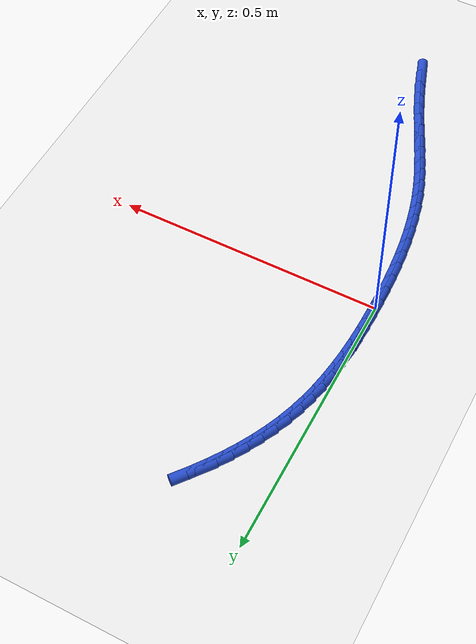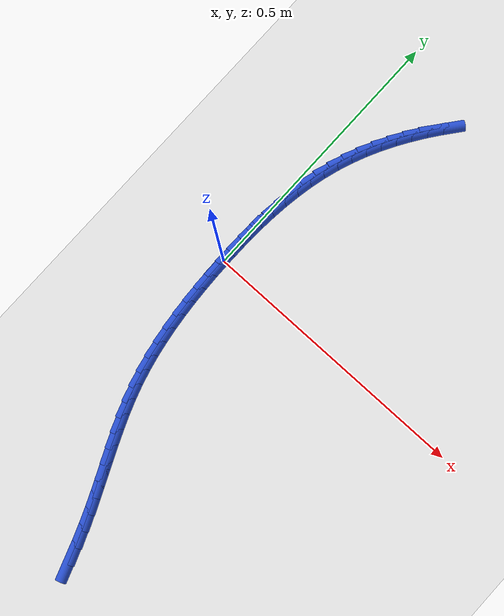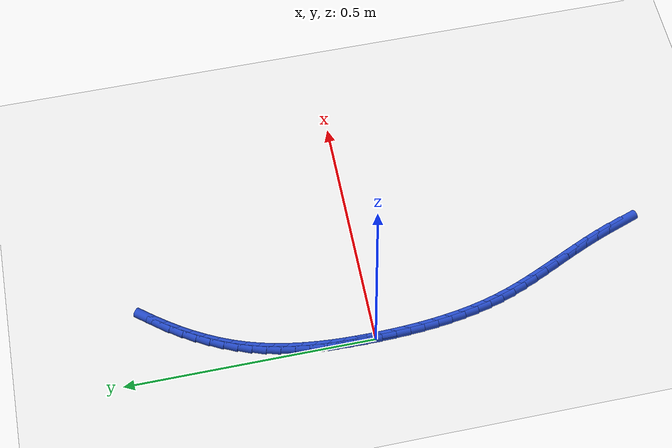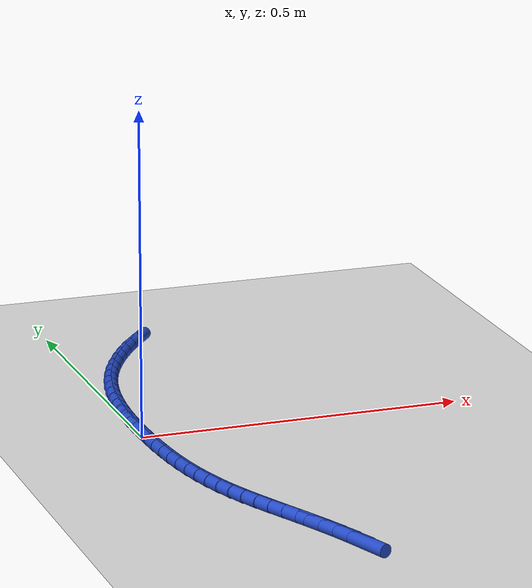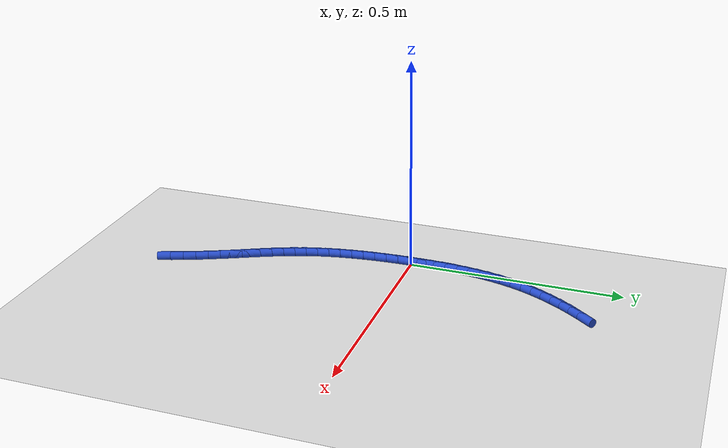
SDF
<sdf version="1.6">
 <world name="default">
  <model name="ground_plane">
   <static>1</static>
   <link name="link">
    <collision name="collision">
     <geometry><plane><normal>0 0 1</normal><size>100 100</size></plane></geometry>
     <surface><friction><ode><mu>100</mu><mu2>50</mu2></ode></friction></surface>
    </collision>
    <visual name="visual">
     <cast_shadows>0</cast_shadows>
     <geometry><plane><normal>0 0 1</normal><size>100 100</size></plane></geometry>
     <material>
      <script><uri>file://media/materials/scripts/gazebo.material</uri><name>Gazebo/WhiteGlow</name></script>
     </material>
    </visual>
   </link>
  </model>
  <model name="line">
   <link name="link_0">
    <pose>-3.469446951953614e-18 -4.85722573273506e-17 0.01 0 1.57 1.5706727892045793</pose>
    <collision name="collision">
     <geometry><cylinder><radius>0.01</radius><length>0.08</length></cylinder></geometry>
    </collision>
    <visual name="visual">
     <material>
      <script><name>Gazebo/Blue</name><uri>file://media/materials/scripts/gazebo.material</uri></script>
     </material>
     <geometry><cylinder><radius>0.01</radius><length>0.08</length></cylinder></geometry>
    </visual>
   </link>
   <link name="link_1">
    <pose>3.5528886475424563e-06 0.0287595752867521 0.01 0 1.57 1.5489522809408764</pose>
    <collision name="collision">
     <geometry><cylinder><radius>0.01</radius><length>0.08</length></cylinder></geometry>
    </collision>
    <visual name="visual">
     <material>
      <script><name>Gazebo/Blue</name><uri>file://media/materials/scripts/gazebo.material</uri></script>
     </material>
     <geometry><cylinder><radius>0.01</radius><length>0.08</length></cylinder></geometry>
    </visual>
   </link>
   <link name="link_2">
    <pose>0.0006304451668905879 0.057453553017089924 0.01 0 1.57 1.5232653918438757</pose>
    <collision name="collision">
     <geometry><cylinder><radius>0.01</radius><length>0.08</length></cylinder></geometry>
    </collision>
    <visual name="visual">
     <material>
      <script><name>Gazebo/Blue</name><uri>file://media/materials/scripts/gazebo.material</uri></script>
     </material>
     <geometry><cylinder><radius>0.01</radius><length>0.08</length></cylinder></geometry>
    </visual>
   </link>
   <link name="link_3">
    <pose>0.001989441794584432 0.08602385285427798 0.01 0 1.57 1.4934595465308282</pose>
    <collision name="collision">
     <geometry><cylinder><radius>0.01</radius><length>0.08</length></cylinder></geometry>
    </collision>
    <visual name="visual">
     <material>
      <script><name>Gazebo/Blue</name><uri>file://media/materials/scripts/gazebo.material</uri></script>
     </material>
     <geometry><cylinder><radius>0.01</radius><length>0.08</length></cylinder></geometry>
    </visual>
   </link>
   <link name="link_4">
    <pose>0.004189307731584379 0.11441239446158094 0.01 0 1.57 1.4593718225182803</pose>
    <collision name="collision">
     <geometry><cylinder><radius>0.01</radius><length>0.08</length></cylinder></geometry>
    </collision>
    <visual name="visual">
     <material>
      <script><name>Gazebo/Blue</name><uri>file://media/materials/scripts/gazebo.material</uri></script>
     </material>
     <geometry><cylinder><radius>0.01</radius><length>0.08</length></cylinder></geometry>
    </visual>
   </link>
   <link name="link_5">
    <pose>0.007338807937745731 0.14256109750226337 0.01 0 1.57 1.4208431871317464</pose>
    <collision name="collision">
     <geometry><cylinder><radius>0.01</radius><length>0.08</length></cylinder></geometry>
    </collision>
    <visual name="visual">
     <material>
      <script><name>Gazebo/Blue</name><uri>file://media/materials/scripts/gazebo.material</uri></script>
     </material>
     <geometry><cylinder><radius>0.01</radius><length>0.08</length></cylinder></geometry>
    </visual>
   </link>
   <link name="link_6">
    <pose>0.011546707372923794 0.17041188163958992 0.01 0 1.57 1.3777372547432474</pose>
    <collision name="collision">
     <geometry><cylinder><radius>0.01</radius><length>0.08</length></cylinder></geometry>
    </collision>
    <visual name="visual">
     <material>
      <script><name>Gazebo/Blue</name><uri>file://media/materials/scripts/gazebo.material</uri></script>
     </material>
     <geometry><cylinder><radius>0.01</radius><length>0.08</length></cylinder></geometry>
    </visual>
   </link>
   <link name="link_7">
    <pose>0.01692177099697386 0.1979066665368252 0.01 0 1.57 1.3299640991069586</pose>
    <collision name="collision">
     <geometry><cylinder><radius>0.01</radius><length>0.08</length></cylinder></geometry>
    </collision>
    <visual name="visual">
     <material>
      <script><name>Gazebo/Blue</name><uri>file://media/materials/scripts/gazebo.material</uri></script>
     </material>
     <geometry><cylinder><radius>0.01</radius><length>0.08</length></cylinder></geometry>
    </visual>
   </link>
   <link name="link_8">
    <pose>0.023572763769751245 0.22498737185723383 0.01 0 1.57 1.2775089130807966</pose>
    <collision name="collision">
     <geometry><cylinder><radius>0.01</radius><length>0.08</length></cylinder></geometry>
    </collision>
    <visual name="visual">
     <material>
      <script><name>Gazebo/Blue</name><uri>file://media/materials/scripts/gazebo.material</uri></script>
     </material>
     <geometry><cylinder><radius>0.01</radius><length>0.08</length></cylinder></geometry>
    </visual>
   </link>
   <link name="link_9">
    <pose>0.031608450651111245 0.2515959172640805 0.01 0 1.57 1.2209503418457286</pose>
    <collision name="collision">
     <geometry><cylinder><radius>0.01</radius><length>0.08</length></cylinder></geometry>
    </collision>
    <visual name="visual">
     <material>
      <script><name>Gazebo/Blue</name><uri>file://media/materials/scripts/gazebo.material</uri></script>
     </material>
     <geometry><cylinder><radius>0.01</radius><length>0.08</length></cylinder></geometry>
    </visual>
   </link>
   <link name="link_10">
    <pose>0.041124724547704376 0.27767833581572926 0.01 0 1.57 1.165088919046137</pose>
    <collision name="collision">
     <geometry><cylinder><radius>0.01</radius><length>0.08</length></cylinder></geometry>
    </collision>
    <visual name="visual">
     <material>
      <script><name>Gazebo/Blue</name><uri>file://media/materials/scripts/gazebo.material</uri></script>
     </material>
     <geometry><cylinder><radius>0.01</radius><length>0.08</length></cylinder></geometry>
    </visual>
   </link>
   <link name="link_11">
    <pose>0.052095644841664776 0.3032195937084639 0.01 0 1.57 1.1126270308486028</pose>
    <collision name="collision">
     <geometry><cylinder><radius>0.01</radius><length>0.08</length></cylinder></geometry>
    </collision>
    <visual name="visual">
     <material>
      <script><name>Gazebo/Blue</name><uri>file://media/materials/scripts/gazebo.material</uri></script>
     </material>
     <geometry><cylinder><radius>0.01</radius><length>0.08</length></cylinder></geometry>
    </visual>
   </link>
   <link name="link_12">
    <pose>0.06442812869197069 0.32822611311667155 0.01 0 1.57 1.0636623158189433</pose>
    <collision name="collision">
     <geometry><cylinder><radius>0.01</radius><length>0.08</length></cylinder></geometry>
    </collision>
    <visual name="visual">
     <material>
      <script><name>Gazebo/Blue</name><uri>file://media/materials/scripts/gazebo.material</uri></script>
     </material>
     <geometry><cylinder><radius>0.01</radius><length>0.08</length></cylinder></geometry>
    </visual>
   </link>
   <link name="link_13">
    <pose>0.07802839228216304 0.3527045402185469 0.01 0 1.57 1.0181881492837634</pose>
    <collision name="collision">
     <geometry><cylinder><radius>0.01</radius><length>0.08</length></cylinder></geometry>
    </collision>
    <visual name="visual">
     <material>
      <script><name>Gazebo/Blue</name><uri>file://media/materials/scripts/gazebo.material</uri></script>
     </material>
     <geometry><cylinder><radius>0.01</radius><length>0.08</length></cylinder></geometry>
    </visual>
   </link>
   <link name="link_14">
    <pose>0.09280265179578287 0.3766615211922848 0.01 0 1.57 0.976138756294928</pose>
    <collision name="collision">
     <geometry><cylinder><radius>0.01</radius><length>0.08</length></cylinder></geometry>
    </collision>
    <visual name="visual">
     <material>
      <script><name>Gazebo/Blue</name><uri>file://media/materials/scripts/gazebo.material</uri></script>
     </material>
     <geometry><cylinder><radius>0.01</radius><length>0.08</length></cylinder></geometry>
    </visual>
   </link>
   <link name="link_15">
    <pose>0.10865712341637107 0.40010370221607977 0.01 0 1.57 0.9374065995087001</pose>
    <collision name="collision">
     <geometry><cylinder><radius>0.01</radius><length>0.08</length></cylinder></geometry>
    </collision>
    <visual name="visual">
     <material>
      <script><name>Gazebo/Blue</name><uri>file://media/materials/scripts/gazebo.material</uri></script>
     </material>
     <geometry><cylinder><radius>0.01</radius><length>0.08</length></cylinder></geometry>
    </visual>
   </link>
   <link name="link_16">
    <pose>0.12549802332746873 0.4230377294681269 0.01 0 1.57 0.901857479022272</pose>
    <collision name="collision">
     <geometry><cylinder><radius>0.01</radius><length>0.08</length></cylinder></geometry>
    </collision>
    <visual name="visual">
     <material>
      <script><name>Gazebo/Blue</name><uri>file://media/materials/scripts/gazebo.material</uri></script>
     </material>
     <geometry><cylinder><radius>0.01</radius><length>0.08</length></cylinder></geometry>
    </visual>
   </link>
   <link name="link_220">
    <pose>0.1489531059514791 -0.542158627953554 0.01 0 1.57 -1.2347671677833867</pose>
    <collision name="collision">
     <geometry><cylinder><radius>0.01</radius><length>0.08</length></cylinder></geometry>
    </collision>
    <visual name="visual">
     <material>
      <script><name>Gazebo/Blue</name><uri>file://media/materials/scripts/gazebo.material</uri></script>
     </material>
     <geometry><cylinder><radius>0.01</radius><length>0.08</length></cylinder></geometry>
    </visual>
   </link>
   <link name="link_221">
    <pose>0.13873270841588797 -0.5128969128521625 0.01 0 1.57 -1.2092306453737074</pose>
    <collision name="collision">
     <geometry><cylinder><radius>0.01</radius><length>0.08</length></cylinder></geometry>
    </collision>
    <visual name="visual">
     <material>
      <script><name>Gazebo/Blue</name><uri>file://media/materials/scripts/gazebo.material</uri></script>
     </material>
     <geometry><cylinder><radius>0.01</radius><length>0.08</length></cylinder></geometry>
    </visual>
   </link>
   <link name="link_222">
    <pose>0.12800739786080348 -0.48453743617247347 0.01 0 1.57 -1.1819973806857564</pose>
    <collision name="collision">
     <geometry><cylinder><radius>0.01</radius><length>0.08</length></cylinder></geometry>
    </collision>
    <visual name="visual">
     <material>
      <script><name>Gazebo/Blue</name><uri>file://media/materials/scripts/gazebo.material</uri></script>
     </material>
     <geometry><cylinder><radius>0.01</radius><length>0.08</length></cylinder></geometry>
    </visual>
   </link>
   <link name="link_223">
    <pose>0.11678402918955162 -0.4571400862432785 0.01 0 1.57 -1.1616739996399112</pose>
    <collision name="collision">
     <geometry><cylinder><radius>0.01</radius><length>0.08</length></cylinder></geometry>
    </collision>
    <visual name="visual">
     <material>
      <script><name>Gazebo/Blue</name><uri>file://media/materials/scripts/gazebo.material</uri></script>
     </material>
     <geometry><cylinder><radius>0.01</radius><length>0.08</length></cylinder></geometry>
    </visual>
   </link>
   <link name="link_224">
    <pose>0.10524857368687612 -0.43053544783450565 0.01 0 1.57 -1.149211244260304</pose>
    <collision name="collision">
     <geometry><cylinder><radius>0.01</radius><length>0.08</length></cylinder></geometry>
    </collision>
    <visual name="visual">
     <material>
      <script><name>Gazebo/Blue</name><uri>file://media/materials/scripts/gazebo.material</uri></script>
     </material>
     <geometry><cylinder><radius>0.01</radius><length>0.08</length></cylinder></geometry>
    </visual>
   </link>
   <link name="link_225">
    <pose>0.09359309260084098 -0.40454630938694575 0.01 0 1.57 -1.1451610865402697</pose>
    <collision name="collision">
     <geometry><cylinder><radius>0.01</radius><length>0.08</length></cylinder></geometry>
    </collision>
    <visual name="visual">
     <material>
      <script><name>Gazebo/Blue</name><uri>file://media/materials/scripts/gazebo.material</uri></script>
     </material>
     <geometry><cylinder><radius>0.01</radius><length>0.08</length></cylinder></geometry>
    </visual>
   </link>
   <link name="link_226">
    <pose>0.08200964717951058 -0.3789954593413903 0.01 0 1.57 -1.1499516948724693</pose>
    <collision name="collision">
     <geometry><cylinder><radius>0.01</radius><length>0.08</length></cylinder></geometry>
    </collision>
    <visual name="visual">
     <material>
      <script><name>Gazebo/Blue</name><uri>file://media/materials/scripts/gazebo.material</uri></script>
     </material>
     <geometry><cylinder><radius>0.01</radius><length>0.08</length></cylinder></geometry>
    </visual>
   </link>
   <link name="link_227">
    <pose>0.07069029867094924 -0.353705686138631 0.01 0 1.57 -1.1638732234232825</pose>
    <collision name="collision">
     <geometry><cylinder><radius>0.01</radius><length>0.08</length></cylinder></geometry>
    </collision>
    <visual name="visual">
     <material>
      <script><name>Gazebo/Blue</name><uri>file://media/materials/scripts/gazebo.material</uri></script>
     </material>
     <geometry><cylinder><radius>0.01</radius><length>0.08</length></cylinder></geometry>
    </visual>
   </link>
   <link name="link_228">
    <pose>0.05982710832322131 -0.3284997782194594 0.01 0 1.57 -1.1870478826179716</pose>
    <collision name="collision">
     <geometry><cylinder><radius>0.01</radius><length>0.08</length></cylinder></geometry>
    </collision>
    <visual name="visual">
     <material>
      <script><name>Gazebo/Blue</name><uri>file://media/materials/scripts/gazebo.material</uri></script>
     </material>
     <geometry><cylinder><radius>0.01</radius><length>0.08</length></cylinder></geometry>
    </visual>
   </link>
   <link name="link_229">
    <pose>0.04961213738439117 -0.3032005240246673 0.01 0 1.57 -1.2193828168302743</pose>
    <collision name="collision">
     <geometry><cylinder><radius>0.01</radius><length>0.08</length></cylinder></geometry>
    </collision>
    <visual name="visual">
     <material>
      <script><name>Gazebo/Blue</name><uri>file://media/materials/scripts/gazebo.material</uri></script>
     </material>
     <geometry><cylinder><radius>0.01</radius><length>0.08</length></cylinder></geometry>
    </visual>
   </link>
   <link name="link_230">
    <pose>0.04023744710252293 -0.2776307119950457 0.01 0 1.57 -1.260469462826123</pose>
    <collision name="collision">
     <geometry><cylinder><radius>0.01</radius><length>0.08</length></cylinder></geometry>
    </collision>
    <visual name="visual">
     <material>
      <script><name>Gazebo/Blue</name><uri>file://media/materials/scripts/gazebo.material</uri></script>
     </material>
     <geometry><cylinder><radius>0.01</radius><length>0.08</length></cylinder></geometry>
    </visual>
   </link>
   <link name="link_231">
    <pose>0.03189418888093026 -0.2516139616929692 0.01 0 1.57 -1.3058041258204578</pose>
    <collision name="collision">
     <geometry><cylinder><radius>0.01</radius><length>0.08</length></cylinder></geometry>
    </collision>
    <visual name="visual">
     <material>
      <script><name>Gazebo/Blue</name><uri>file://media/materials/scripts/gazebo.material</uri></script>
     </material>
     <geometry><cylinder><radius>0.01</radius><length>0.08</length></cylinder></geometry>
    </visual>
   </link>
   <link name="link_232">
    <pose>0.024686365563826848 -0.22505350082075493 0.01 0 1.57 -1.3481169631570666</pose>
    <collision name="collision">
     <geometry><cylinder><radius>0.01</radius><length>0.08</length></cylinder></geometry>
    </collision>
    <visual name="visual">
     <material>
      <script><name>Gazebo/Blue</name><uri>file://media/materials/scripts/gazebo.material</uri></script>
     </material>
     <geometry><cylinder><radius>0.01</radius><length>0.08</length></cylinder></geometry>
    </visual>
   </link>
   <link name="link_233">
    <pose>0.018559843794202988 -0.1979970107465929 0.01 0 1.57 -1.3867923459586868</pose>
    <collision name="collision">
     <geometry><cylinder><radius>0.01</radius><length>0.08</length></cylinder></geometry>
    </collision>
    <visual name="visual">
     <material>
      <script><name>Gazebo/Blue</name><uri>file://media/materials/scripts/gazebo.material</uri></script>
     </material>
     <geometry><cylinder><radius>0.01</radius><length>0.08</length></cylinder></geometry>
    </visual>
   </link>
   <link name="link_234">
    <pose>0.013443782682341249 -0.17050743477318642 0.01 0 1.57 -1.4219947182061825</pose>
    <collision name="collision">
     <geometry><cylinder><radius>0.01</radius><length>0.08</length></cylinder></geometry>
    </collision>
    <visual name="visual">
     <material>
      <script><name>Gazebo/Blue</name><uri>file://media/materials/scripts/gazebo.material</uri></script>
     </material>
     <geometry><cylinder><radius>0.01</radius><length>0.08</length></cylinder></geometry>
    </visual>
   </link>
   <link name="link_235">
    <pose>0.009267341338524221 -0.14264771620323882 0.01 0 1.57 -1.4539009372343954</pose>
    <collision name="collision">
     <geometry><cylinder><radius>0.01</radius><length>0.08</length></cylinder></geometry>
    </collision>
    <visual name="visual">
     <material>
      <script><name>Gazebo/Blue</name><uri>file://media/materials/scripts/gazebo.material</uri></script>
     </material>
     <geometry><cylinder><radius>0.01</radius><length>0.08</length></cylinder></geometry>
    </visual>
   </link>
   <link name="link_236">
    <pose>0.005959678873034478 -0.11448079833945339 0.01 0 1.57 -1.4826892000646634</pose>
    <collision name="collision">
     <geometry><cylinder><radius>0.01</radius><length>0.08</length></cylinder></geometry>
    </collision>
    <visual name="visual">
     <material>
      <script><name>Gazebo/Blue</name><uri>file://media/materials/scripts/gazebo.material</uri></script>
     </material>
     <geometry><cylinder><radius>0.01</radius><length>0.08</length></cylinder></geometry>
    </visual>
   </link>
   <link name="link_237">
    <pose>0.0034499543961546086 -0.08606962448453359 0.01 0 1.57 -1.508530911662416</pose>
    <collision name="collision">
     <geometry><cylinder><radius>0.01</radius><length>0.08</length></cylinder></geometry>
    </collision>
    <visual name="visual">
     <material>
      <script><name>Gazebo/Blue</name><uri>file://media/materials/scripts/gazebo.material</uri></script>
     </material>
     <geometry><cylinder><radius>0.01</radius><length>0.08</length></cylinder></geometry>
    </visual>
   </link>
   <link name="link_238">
    <pose>0.0016673270181671478 -0.05747713794118193 0.01 0 1.57 -1.5315848928528193</pose>
    <collision name="collision">
     <geometry><cylinder><radius>0.01</radius><length>0.08</length></cylinder></geometry>
    </collision>
    <visual name="visual">
     <material>
      <script><name>Gazebo/Blue</name><uri>file://media/materials/scripts/gazebo.material</uri></script>
     </material>
     <geometry><cylinder><radius>0.01</radius><length>0.08</length></cylinder></geometry>
    </visual>
   </link>
   <link name="link_239">
    <pose>0.0005409558493547724 -0.028766282012103267 0.01 0 1.57 -1.5519933373942154</pose>
    <collision name="collision">
     <geometry><cylinder><radius>0.01</radius><length>0.08</length></cylinder></geometry>
    </collision>
    <visual name="visual">
     <material>
      <script><name>Gazebo/Blue</name><uri>file://media/materials/scripts/gazebo.material</uri></script>
     </material>
     <geometry><cylinder><radius>0.01</radius><length>0.08</length></cylinder></geometry>
    </visual>
   </link>
   <link name="link_240">
    <pose>6.071532165918825e-18 -2.3592239273284576e-16 0.01 0 1.57 -1.5698789921177998</pose>
    <collision name="collision">
     <geometry><cylinder><radius>0.01</radius><length>0.08</length></cylinder></geometry>
    </collision>
    <visual name="visual">
     <material>
      <script><name>Gazebo/Blue</name><uri>file://media/materials/scripts/gazebo.material</uri></script>
     </material>
     <geometry><cylinder><radius>0.01</radius><length>0.08</length></cylinder></geometry>
    </visual>
   </link>
   <link name="link_241">
    <pose>-2.6381419614569888e-05 0.028758764792423827 0.01 0 1.57 1.5562495387529658</pose>
    <collision name="collision">
     <geometry><cylinder><radius>0.01</radius><length>0.08</length></cylinder></geometry>
    </collision>
    <visual name="visual">
     <material>
      <script><name>Gazebo/Blue</name><uri>file://media/materials/scripts/gazebo.material</uri></script>
     </material>
     <geometry><cylinder><radius>0.01</radius><length>0.08</length></cylinder></geometry>
    </visual>
   </link>
   <link name="link_242">
    <pose>0.0003909707007936263 0.05744706906246556 0.01 0 1.57 1.5639906764636442</pose>
    <collision name="collision">
     <geometry><cylinder><radius>0.01</radius><length>0.08</length></cylinder></geometry>
    </collision>
    <visual name="visual">
     <material>
      <script><name>Gazebo/Blue</name><uri>file://media/materials/scripts/gazebo.material</uri></script>
     </material>
     <geometry><cylinder><radius>0.01</radius><length>0.08</length></cylinder></geometry>
    </visual>
   </link>
  </model>
 </world>
</sdf>
